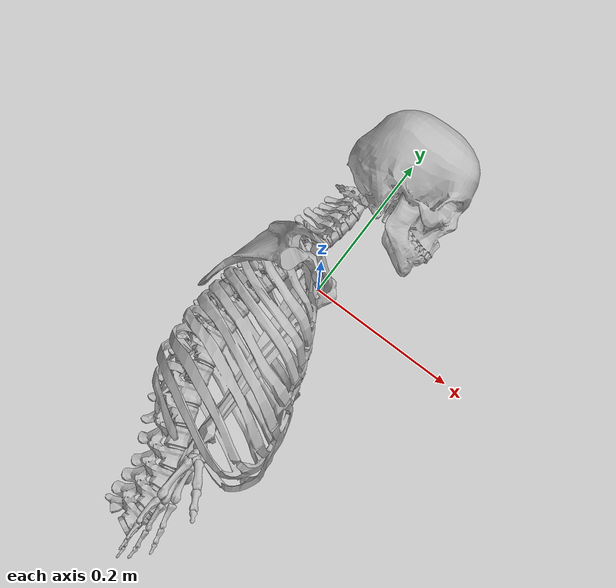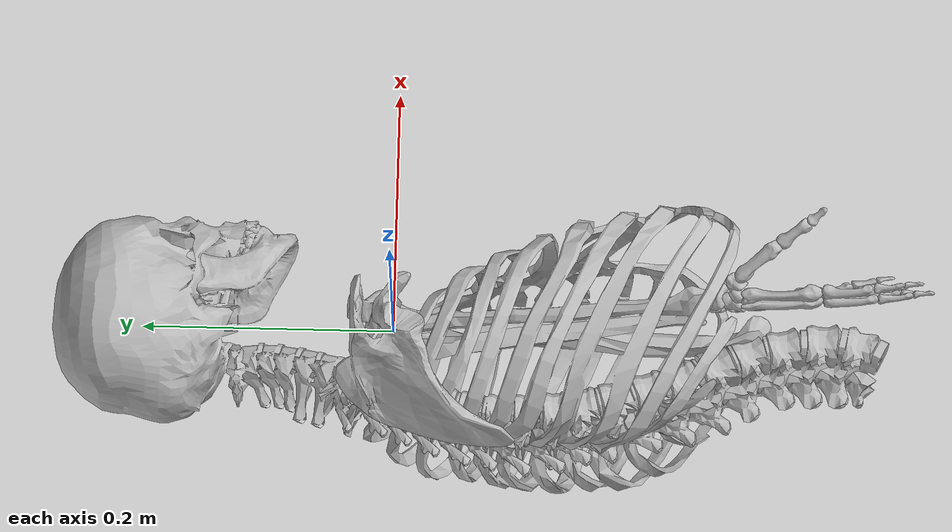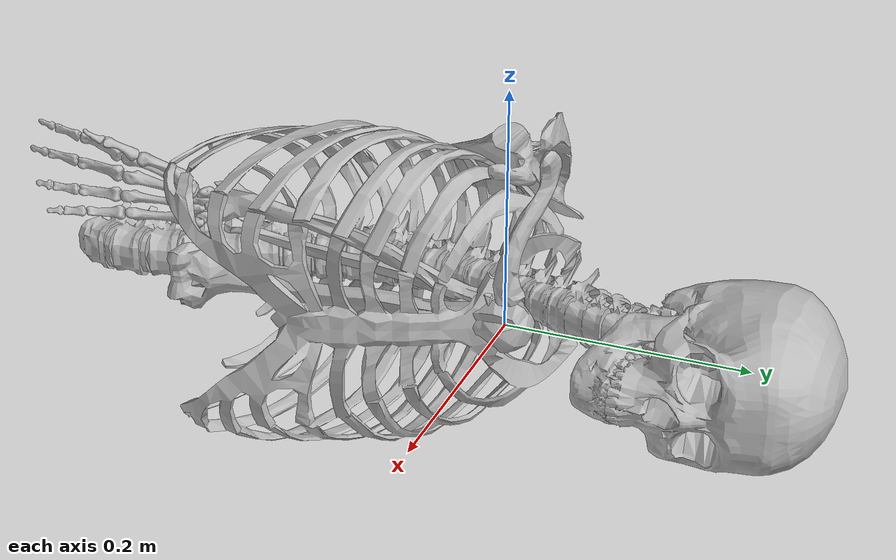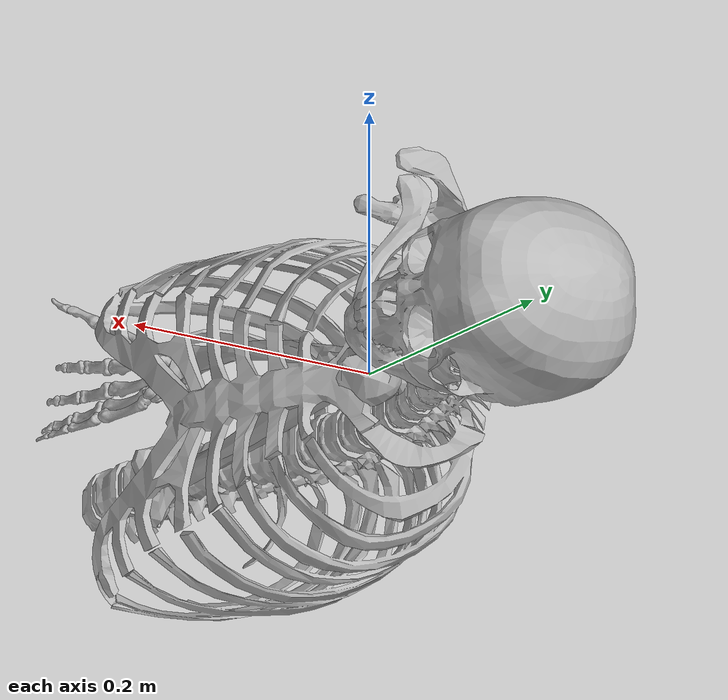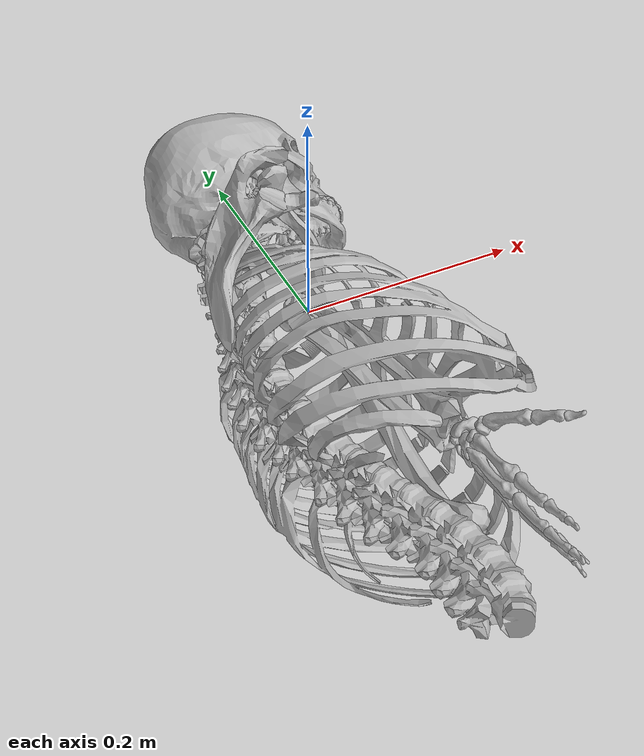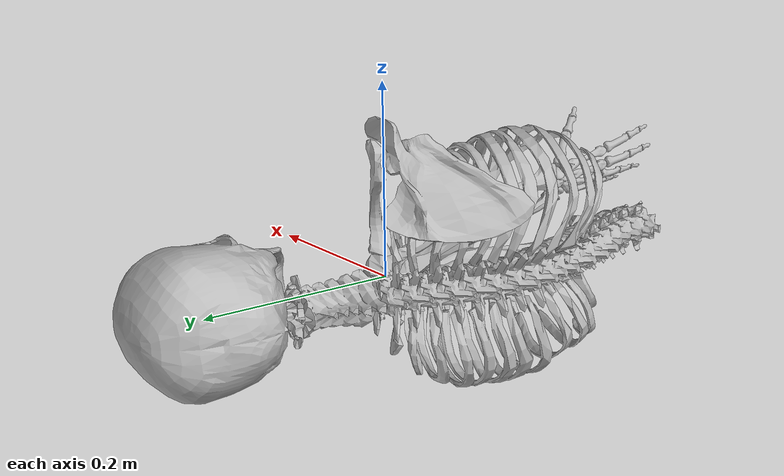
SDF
<?xml version="1.0" ?>
<sdf version="1.5">
  <model name="arm26">
    <muscles>model://arm26/muscles.osim</muscles>
    <link name="ground">
      <pose>0.0 0.0 0.0 0.0 0.0 0.0</pose>
      <inertial>
        <mass>0.0001</mass>
        <pose>0.0 0.0 0.0 0.0 0.0 0.0</pose>
        <inertia>
          <ixx>0</ixx>
          <ixy>0</ixy>
          <ixz>0</ixz>
          <iyy>0</iyy>
          <iyz>0</iyz>
          <izz>0</izz>
        </inertia>
      </inertial>
    </link>
    <link name="base">
      <pose>0.0 0.0 0.0 0.0 0.0 0.0</pose>
      <inertial>
        <mass>0.0001</mass>
        <pose>0.0 0.0 0.0 0.0 0.0 0.0</pose>
        <inertia>
          <ixx>0</ixx>
          <ixy>0</ixy>
          <ixz>0</ixz>
          <iyy>0</iyy>
          <iyz>0</iyz>
          <izz>0</izz>
        </inertia>
      </inertial>
      <visual name="ground_ribs">
        <pose> -0 0 -0 0 0 0</pose>
        <geometry>
          <mesh>
            <uri>model://arm26/meshes/visuals/ground_ribs.dae</uri>
            <scale> 1 1 1</scale>
          </mesh>
        </geometry>
      </visual>
      <visual name="ground_spine">
        <pose> -0 0 -0 0 0 0</pose>
        <geometry>
          <mesh>
            <uri>model://arm26/meshes/visuals/ground_spine.dae</uri>
            <scale> 1 1 1</scale>
          </mesh>
        </geometry>
      </visual>
      <visual name="ground_skull">
        <pose> -0 0 -0 0 0 0</pose>
        <geometry>
          <mesh>
            <uri>model://arm26/meshes/visuals/ground_skull.dae</uri>
            <scale> 1 1 1</scale>
          </mesh>
        </geometry>
      </visual>
      <visual name="ground_jaw">
        <pose> -0 0 -0 0 0 0</pose>
        <geometry>
          <mesh>
            <uri>model://arm26/meshes/visuals/ground_jaw.dae</uri>
            <scale> 1 1 1</scale>
          </mesh>
        </geometry>
      </visual>
      <visual name="ground_r_clavicle">
        <pose> -0 0 -0 0 0 0</pose>
        <geometry>
          <mesh>
            <uri>model://arm26/meshes/visuals/ground_r_clavicle.dae</uri>
            <scale> 1 1 1</scale>
          </mesh>
        </geometry>
      </visual>
      <visual name="ground_r_scapula">
        <pose> -0 0 -0 0 0 0</pose>
        <geometry>
          <mesh>
            <uri>model://arm26/meshes/visuals/ground_r_scapula.dae</uri>
            <scale> 1 1 1</scale>
          </mesh>
        </geometry>
      </visual>
    </link>
    <link name="r_humerus">
      <pose>0.0 0.0 0.0 0.0 0.0 0.0</pose>
      <inertial>
        <mass>1.864572</mass>
        <pose>0.0 0.0 0.0 0.0 0.0 0.0</pose>
        <inertia>
          <ixx>0.01481</ixx>
          <ixy>0</ixy>
          <ixz>0</ixz>
          <iyy>0.004551</iyy>
          <iyz>0</iyz>
          <izz>0.013193</izz>
        </inertia>
      </inertial>
      <visual name="arm_r_humerus">
        <pose> -0 0 -0 0 0 0</pose>
        <geometry>
          <mesh>
            <uri>model://arm26/meshes/visuals/arm_r_humerus.dae</uri>
            <scale> 1 1 1</scale>
          </mesh>
        </geometry>
      </visual>
    </link>
    <link name="r_ulna_radius_hand">
      <pose>0.0 0.0 0.0 0.0 0.0 0.0</pose>
      <inertial>
        <mass>1.534315</mass>
        <pose>0.0 0.0 0.0 0.0 0.0 0.0</pose>
        <inertia>
          <ixx>0.019281</ixx>
          <ixy>0</ixy>
          <ixz>0</ixz>
          <iyy>0.001571</iyy>
          <iyz>0</iyz>
          <izz>0.020062</izz>
        </inertia>
      </inertial>
      <visual name="arm_r_ulna">
        <pose> -0 0 -0 0 0 0</pose>
        <geometry>
          <mesh>
            <uri>model://arm26/meshes/visuals/arm_r_ulna.dae</uri>
            <scale> 1 1 1</scale>
          </mesh>
        </geometry>
      </visual>
      <visual name="arm_r_radius">
        <pose> -0 0 -0 0 0 0</pose>
        <geometry>
          <mesh>
            <uri>model://arm26/meshes/visuals/arm_r_radius.dae</uri>
            <scale> 1 1 1</scale>
          </mesh>
        </geometry>
      </visual>
      <visual name="arm_r_lunate">
        <pose> -0 0 -0 0 0 0</pose>
        <geometry>
          <mesh>
            <uri>model://arm26/meshes/visuals/arm_r_lunate.dae</uri>
            <scale> 1 1 1</scale>
          </mesh>
        </geometry>
      </visual>
      <visual name="arm_r_scaphoid">
        <pose> -0 0 -0 0 0 0</pose>
        <geometry>
          <mesh>
            <uri>model://arm26/meshes/visuals/arm_r_scaphoid.dae</uri>
            <scale> 1 1 1</scale>
          </mesh>
        </geometry>
      </visual>
      <visual name="arm_r_pisiform">
        <pose> -0 0 -0 0 0 0</pose>
        <geometry>
          <mesh>
            <uri>model://arm26/meshes/visuals/arm_r_pisiform.dae</uri>
            <scale> 1 1 1</scale>
          </mesh>
        </geometry>
      </visual>
      <visual name="arm_r_triquetrum">
        <pose> -0 0 -0 0 0 0</pose>
        <geometry>
          <mesh>
            <uri>model://arm26/meshes/visuals/arm_r_triquetrum.dae</uri>
            <scale> 1 1 1</scale>
          </mesh>
        </geometry>
      </visual>
      <visual name="arm_r_capitate">
        <pose> -0 0 -0 0 0 0</pose>
        <geometry>
          <mesh>
            <uri>model://arm26/meshes/visuals/arm_r_capitate.dae</uri>
            <scale> 1 1 1</scale>
          </mesh>
        </geometry>
      </visual>
      <visual name="arm_r_trapezium">
        <pose> -0 0 -0 0 0 0</pose>
        <geometry>
          <mesh>
            <uri>model://arm26/meshes/visuals/arm_r_trapezium.dae</uri>
            <scale> 1 1 1</scale>
          </mesh>
        </geometry>
      </visual>
      <visual name="arm_r_trapezoid">
        <pose> -0 0 -0 0 0 0</pose>
        <geometry>
          <mesh>
            <uri>model://arm26/meshes/visuals/arm_r_trapezoid.dae</uri>
            <scale> 1 1 1</scale>
          </mesh>
        </geometry>
      </visual>
      <visual name="arm_r_hamate">
        <pose> -0 0 -0 0 0 0</pose>
        <geometry>
          <mesh>
            <uri>model://arm26/meshes/visuals/arm_r_hamate.dae</uri>
            <scale> 1 1 1</scale>
          </mesh>
        </geometry>
      </visual>
      <visual name="arm_r_1mc">
        <pose> -0 0 -0 0 0 0</pose>
        <geometry>
          <mesh>
            <uri>model://arm26/meshes/visuals/arm_r_1mc.dae</uri>
            <scale> 1 1 1</scale>
          </mesh>
        </geometry>
      </visual>
      <visual name="arm_r_2mc">
        <pose> -0 0 -0 0 0 0</pose>
        <geometry>
          <mesh>
            <uri>model://arm26/meshes/visuals/arm_r_2mc.dae</uri>
            <scale> 1 1 1</scale>
          </mesh>
        </geometry>
      </visual>
      <visual name="arm_r_3mc">
        <pose> -0 0 -0 0 0 0</pose>
        <geometry>
          <mesh>
            <uri>model://arm26/meshes/visuals/arm_r_3mc.dae</uri>
            <scale> 1 1 1</scale>
          </mesh>
        </geometry>
      </visual>
      <visual name="arm_r_4mc">
        <pose> -0 0 -0 0 0 0</pose>
        <geometry>
          <mesh>
            <uri>model://arm26/meshes/visuals/arm_r_4mc.dae</uri>
            <scale> 1 1 1</scale>
          </mesh>
        </geometry>
      </visual>
      <visual name="arm_r_5mc">
        <pose> -0 0 -0 0 0 0</pose>
        <geometry>
          <mesh>
            <uri>model://arm26/meshes/visuals/arm_r_5mc.dae</uri>
            <scale> 1 1 1</scale>
          </mesh>
        </geometry>
      </visual>
      <visual name="arm_r_thumbprox">
        <pose> -0 0 -0 0 0 0</pose>
        <geometry>
          <mesh>
            <uri>model://arm26/meshes/visuals/arm_r_thumbprox.dae</uri>
            <scale> 1 1 1</scale>
          </mesh>
        </geometry>
      </visual>
      <visual name="arm_r_thumbdist">
        <pose> -0 0 -0 0 0 0</pose>
        <geometry>
          <mesh>
            <uri>model://arm26/meshes/visuals/arm_r_thumbdist.dae</uri>
            <scale> 1 1 1</scale>
          </mesh>
        </geometry>
      </visual>
      <visual name="arm_r_2proxph">
        <pose> -0 0 -0 0 0 0</pose>
        <geometry>
          <mesh>
            <uri>model://arm26/meshes/visuals/arm_r_2proxph.dae</uri>
            <scale> 1 1 1</scale>
          </mesh>
        </geometry>
      </visual>
      <visual name="arm_r_2midph">
        <pose> -0 0 -0 0 0 0</pose>
        <geometry>
          <mesh>
            <uri>model://arm26/meshes/visuals/arm_r_2midph.dae</uri>
            <scale> 1 1 1</scale>
          </mesh>
        </geometry>
      </visual>
      <visual name="arm_r_2distph">
        <pose> -0 0 -0 0 0 0</pose>
        <geometry>
          <mesh>
            <uri>model://arm26/meshes/visuals/arm_r_2distph.dae</uri>
            <scale> 1 1 1</scale>
          </mesh>
        </geometry>
      </visual>
      <visual name="arm_r_3proxph">
        <pose> -0 0 -0 0 0 0</pose>
        <geometry>
          <mesh>
            <uri>model://arm26/meshes/visuals/arm_r_3proxph.dae</uri>
            <scale> 1 1 1</scale>
          </mesh>
        </geometry>
      </visual>
      <visual name="arm_r_3midph">
        <pose> -0 0 -0 0 0 0</pose>
        <geometry>
          <mesh>
            <uri>model://arm26/meshes/visuals/arm_r_3midph.dae</uri>
            <scale> 1 1 1</scale>
          </mesh>
        </geometry>
      </visual>
      <visual name="arm_r_3distph">
        <pose> -0 0 -0 0 0 0</pose>
        <geometry>
          <mesh>
            <uri>model://arm26/meshes/visuals/arm_r_3distph.dae</uri>
            <scale> 1 1 1</scale>
          </mesh>
        </geometry>
      </visual>
      <visual name="arm_r_4proxph">
        <pose> -0 0 -0 0 0 0</pose>
        <geometry>
          <mesh>
            <uri>model://arm26/meshes/visuals/arm_r_4proxph.dae</uri>
            <scale> 1 1 1</scale>
          </mesh>
        </geometry>
      </visual>
      <visual name="arm_r_4midph">
        <pose> -0 0 -0 0 0 0</pose>
        <geometry>
          <mesh>
            <uri>model://arm26/meshes/visuals/arm_r_4midph.dae</uri>
            <scale> 1 1 1</scale>
          </mesh>
        </geometry>
      </visual>
      <visual name="arm_r_4distph">
        <pose> -0 0 -0 0 0 0</pose>
        <geometry>
          <mesh>
            <uri>model://arm26/meshes/visuals/arm_r_4distph.dae</uri>
            <scale> 1 1 1</scale>
          </mesh>
        </geometry>
      </visual>
      <visual name="arm_r_5proxph">
        <pose> -0 0 -0 0 0 0</pose>
        <geometry>
          <mesh>
            <uri>model://arm26/meshes/visuals/arm_r_5proxph.dae</uri>
            <scale> 1 1 1</scale>
          </mesh>
        </geometry>
      </visual>
      <visual name="arm_r_5midph">
        <pose> -0 0 -0 0 0 0</pose>
        <geometry>
          <mesh>
            <uri>model://arm26/meshes/visuals/arm_r_5midph.dae</uri>
            <scale> 1 1 1</scale>
          </mesh>
        </geometry>
      </visual>
      <visual name="arm_r_5distph">
        <pose> -0 0 -0 0 0 0</pose>
        <geometry>
          <mesh>
            <uri>model://arm26/meshes/visuals/arm_r_5distph.dae</uri>
            <scale> 1 1 1</scale>
          </mesh>
        </geometry>
      </visual>
    </link>
    <joint name="world_fix" type="fixed">
      <parent>world</parent>
      <child>ground</child>
    </joint>
    <joint name="offset" type="fixed">
      <parent>ground</parent>
      <pose>0 0.8 0 0 0 0</pose>
      <child>base</child>
    </joint>
    <joint name="r_shoulder" type="ball">
      <parent>base</parent>
      <pose> -0.017545 -0.007 0.17 0 0 0</pose>
      <child>r_humerus</child>
    </joint>
    <joint name="r_elbow" type="ball">
      <parent>r_humerus</parent>
      <pose> 0.0061 -0.2904 -0.0123 0 0 0</pose>
      <child>r_ulna_radius_hand</child>
    </joint>
    <plugin filename="libgazebo_ros_muscle_interface.so" name="muscle_interface_plugin"/>
  </model>
</sdf>
